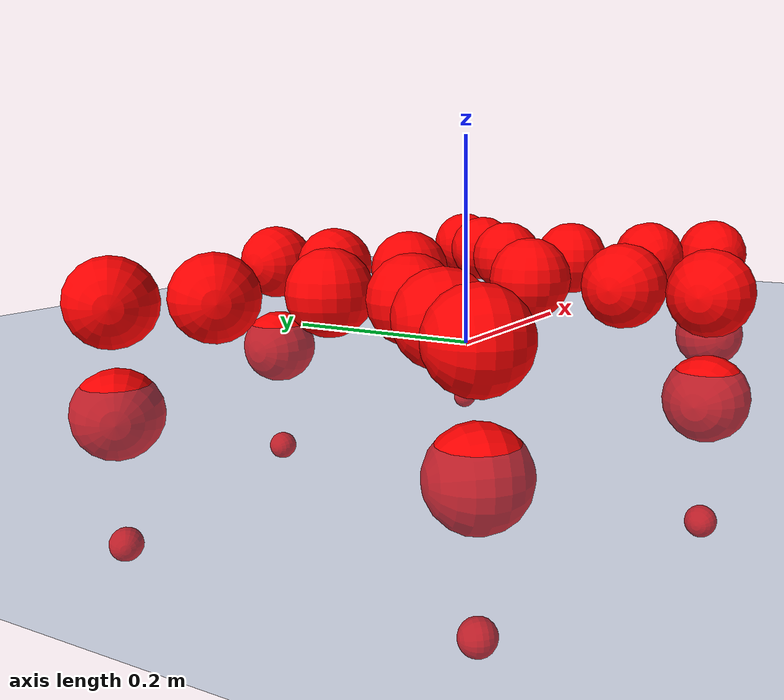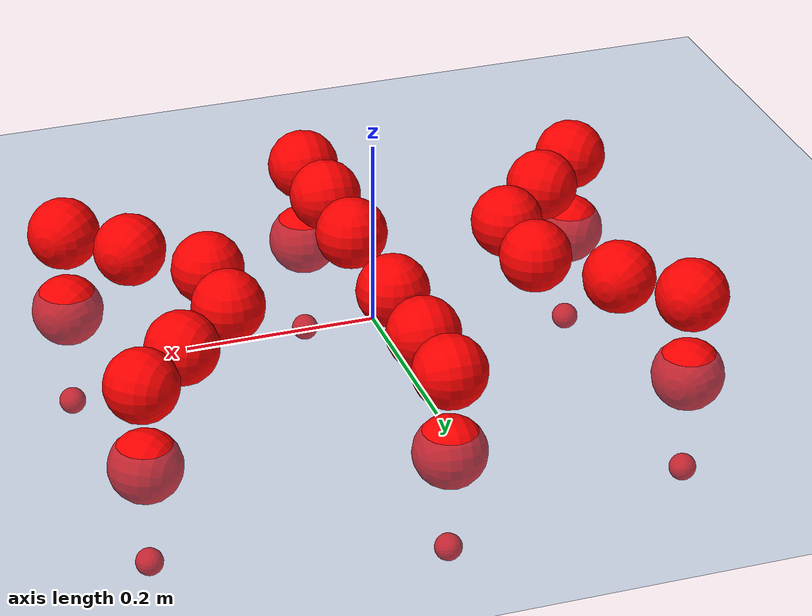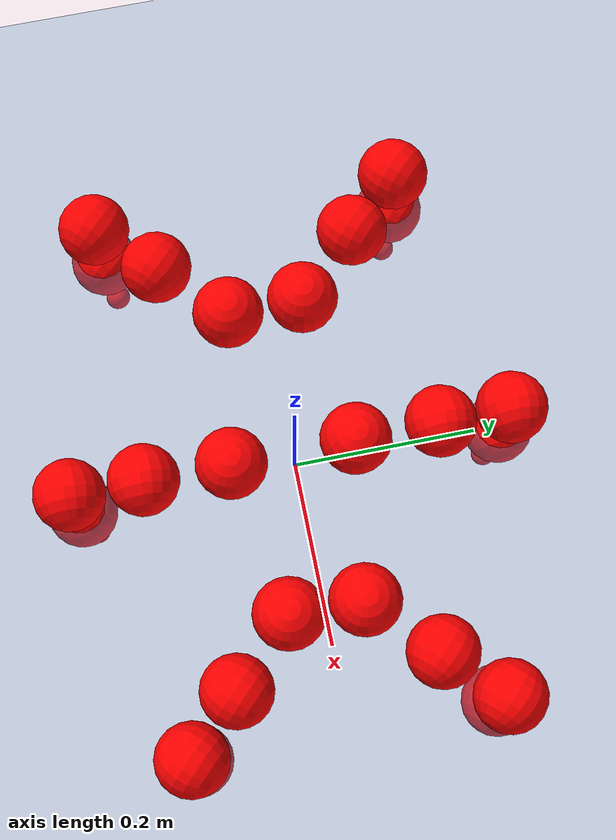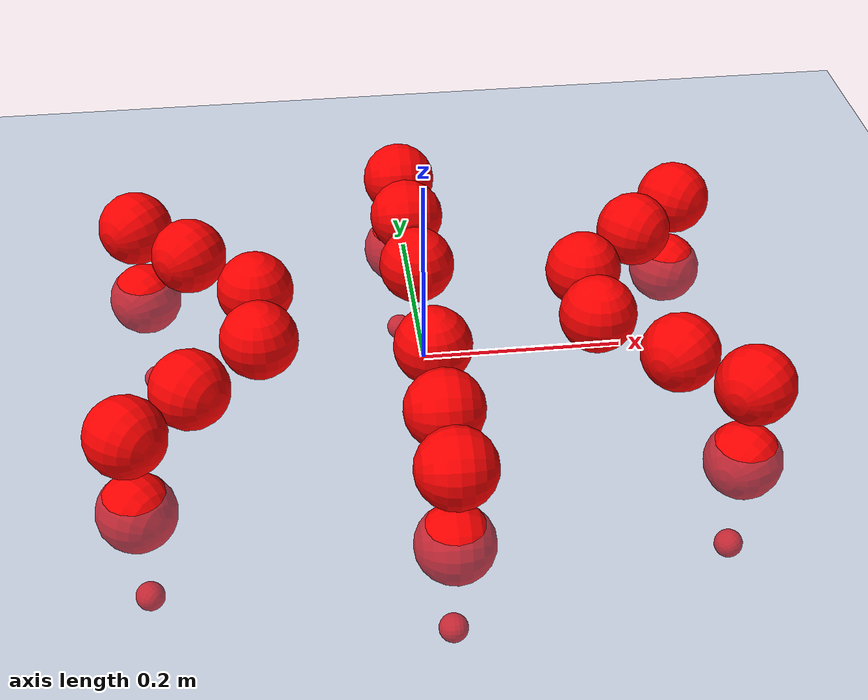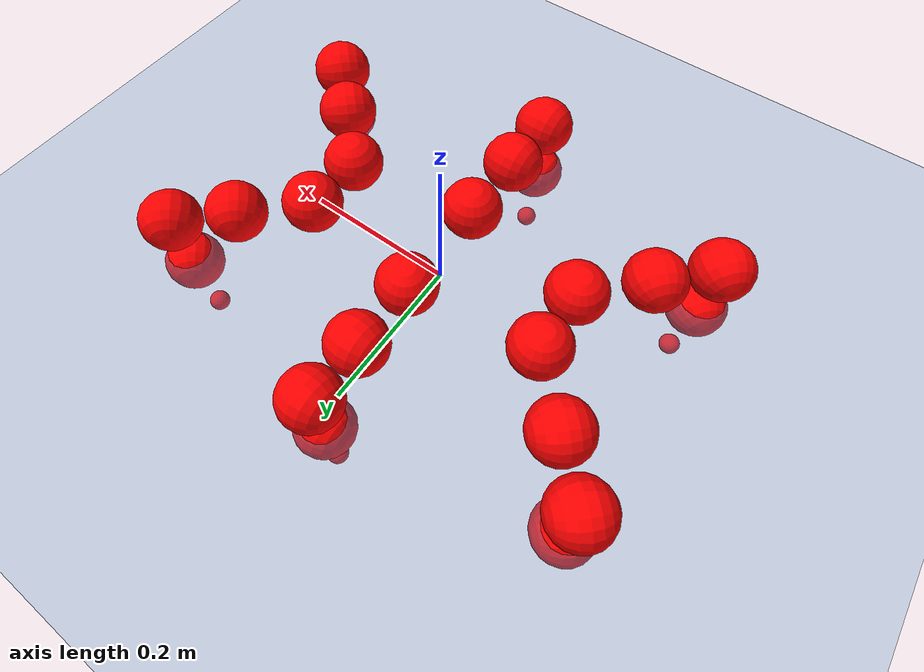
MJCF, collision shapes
<mujoco model="Golem">
  <compiler angle="radian" assetdir="assets" balanceinertia="true" inertiafromgeom="false"/>

  <option timestep="0.005" density="1.2" viscosity="2e-05"/>

  <size nkey="1"/>

  <visual>
    <quality shadowsize="8192"/>
    <map shadowclip="0.5"/>
  </visual>

  <default>
    <default class="/">
      <joint armature="0.01" damping="0.01" frictionloss="0.01"/>
      <geom contype="0" conaffinity="0" group="1" solref="-1000 -80"/>
      <site size="0.01 0.005 0.005" group="5"/>
      <general forcelimited="true" biastype="affine" gainprm="25" biasprm="0 -25 -0.5"/>
      <default class="visual">
        <geom type="mesh" group="2"/>
      </default>
      <default class="collision">
        <geom group="3"/>
      </default>
      <default class="foot">
        <geom size="0.01 0 0" condim="6" group="4" priority="1" solimp="0.015 1 0.01"/>
      </default>
      <default class="reward_collision_sphere">
        <geom group="5" rgba="1 0 0 1"/>
      </default>
    </default>
  </default>

  <asset>
    <texture type="skybox" colorspace="auto" name="//unnamed_texture_0" builtin="gradient" rgb1="0.95 0.95 0.95" rgb2="0.95 0.95 0.95" width="100" height="600"/>
    <texture type="2d" colorspace="auto" name="texplane" builtin="checker" rgb1="0.345 0.575 0.748" rgb2="0.345 0.575 0.748" markrgb="1 1 1" width="512" height="512"/>
    <material name="MatPlane" class="/" texture="texplane" texuniform="true" texrepeat="2 2" specular="0.9"/>
    <mesh name="body" class="/" file="body.stl" scale="0.001 0.001 0.001"/>
    <mesh name="coxa" class="/" file="coxa.stl" scale="0.001 0.001 0.001"/>
    <mesh name="femur" class="/" file="femur.stl" scale="0.001 0.001 0.001"/>
    <mesh name="tibia" class="/" file="tibia.stl" scale="0.001 0.001 0.001"/>
    <mesh name="tarsus" class="/" file="tarsus.stl" scale="0.001 0.001 0.001"/>
  </asset>

  <worldbody>
    <geom name="floor" class="/" size="100 100 0.125" type="plane" group="0" material="MatPlane"/>
    <light name="toplight_shadow" class="/" pos="0 0 5" dir="0.0990148 0.0990148 -0.990148" type="directional" ambient="0.04 0.04 0.04" diffuse="0.55 0.55 0.55" specular="0.12 0.12 0.12"/>
    <light name="toplight_fill" class="/" pos="0 0 5" dir="0.0990148 0.0990148 -0.990148" type="directional" castshadow="false" ambient="0.04 0.04 0.04" diffuse="0.3 0.3 0.3" specular="0.08 0.08 0.08"/>
    <body name="trunk" pos="0.000991321 -0.000854823 -0.00093607" quat="1 -3.57724e-06 -9.55102e-06 3.34994e-07">
      <inertial pos="0.000475362 0.00017656 -0.00352641" quat="0.999999 0.000161071 -0.000225202 -0.00145561" mass="3.13771" diaginertia="0.0126592 0.00211949 0.0142101"/>
      <joint name="//unnamed_joint_0" type="free"/>
      <geom name="//unnamed_geom_1" class="/" pos="0 0 0.0687408" quat="1 0 0 0" type="mesh" rgba="0.9 0.9 0.9 1" mesh="body"/>
      <site name="imu" class="/" pos="0.139443 0.00223298 0.10638" size="0.00952952"/>
      <camera name="track" class="/" pos="0 -1.47323 0" quat="0.707107 0.707107 0 0" mode="trackcom"/>
      <camera name="ego_camera" class="/" pos="0.136262 0 0.107407" quat="-0.5 -0.5 0.5 0.5"/>
      <body name="coxa_RR" pos="-0.185812 -0.061926 0.0685864" quat="0.382855 -0.000386412 9.60083e-05 -0.923808">
        <inertial pos="-0.000254818 -0.00119674 0.00149674" quat="0.999997 -0.00100319 -0.00178606 -0.00119564" mass="0.171359" diaginertia="0.0128092 0.00219358 0.0144192"/>
        <joint name="coxa_joint_RR" class="/" pos="0 0 0" axis="-0.00367989 0.00491364 -0.999981" range="-3.13565 3.141" armature="0.00944029" damping="0.00307968" frictionloss="0.00950136"/>
        <geom name="//unnamed_geom_2" class="/" type="mesh" rgba="0.2 0.2 0.2 1" mesh="coxa"/>
        <geom name="//unnamed_geom_3" class="reward_collision_sphere" size="0.0381181" pos="-0.031445 0 0"/>
        <body name="femur_RR" pos="0.0617779 0.000971629 9.17441e-05" quat="0.50019 -0.499898 0.50001 0.499902">
          <inertial pos="0.000960851 0.000614098 0.000149485" quat="0.999999 -0.000955892 0.000283519 0.000986697" mass="0.173585" diaginertia="0.012674 0.00217002 0.0146069"/>
          <joint name="femur_joint_RR" class="/" pos="0 0 0" axis="0.000807568 -0.00128287 -0.999999" range="-3.14734 3.14913" armature="0.00950932" damping="0" frictionloss="0.00960043"/>
          <geom name="//unnamed_geom_4" class="/" type="mesh" rgba="0.9 0.9 0.9 1" mesh="femur"/>
          <geom name="//unnamed_geom_5" class="reward_collision_sphere" size="0.0381181"/>
          <body name="tibia_RR" pos="0.000484817 -0.081212 0.00177106" quat="-0.000391989 1 -0.000266662 6.07107e-05">
            <inertial pos="-0.000326224 -9.89315e-05 0.000286585" quat="0.999999 -0.00115593 -0.000592261 -0.000156703" mass="0.174581" diaginertia="0.0127454 0.00219281 0.0145829"/>
            <joint name="tibia_joint_RR" class="/" pos="0 0 0" axis="-0.000424669 0.000175756 1" range="-3.15711 3.12249" armature="0.0092793" damping="0.00202514" frictionloss="0.00950559"/>
            <geom name="//unnamed_geom_6" class="/" type="mesh" rgba="0.2 0.2 0.2 1" mesh="tibia"/>
            <geom name="//unnamed_geom_7" class="reward_collision_sphere" size="0.0381181"/>
            <body name="tarsus_RR" pos="0.0921137 0.000643049 5.15486e-05" quat="1 0.000118338 6.86126e-05 -0.000132541">
              <inertial pos="0.0645831 0.000489399 -0.000992867" quat="0.500176 0.499814 0.499768 0.500241" mass="0.17343" diaginertia="0.0126426 0.00214284 0.0142671"/>
              <joint name="tarsus_joint_RR" class="/" pos="0 0 0" axis="-0.00443585 -0.00847322 0.999954" stiffness="0.00242682" range="-3.14473 3.12409" armature="0.00954234" damping="0.0426565" frictionloss="0.00997655"/>
              <geom name="//unnamed_geom_8" class="/" type="mesh" rgba="0.9 0.9 0.9 1" mesh="tarsus"/>
              <geom name="foot_1" class="foot" size="0.00928936" pos="0.117395 0 0" quat="0 -0.707107 0 0.707107"/>
              <geom name="//unnamed_geom_10" class="reward_collision_sphere" size="0.0381181"/>
              <geom name="//unnamed_geom_11" class="reward_collision_sphere" size="0.0142943" pos="0.112678 0 0"/>
              <site name="foot_1" class="foot" pos="0.117395 0 0" quat="0 -0.707107 0 0.707107" size="0.00952952"/>
            </body>
          </body>
        </body>
      </body>
      <body name="coxa_RM" pos="7.76908e-05 -0.0982324 0.0685341" quat="0.707279 -0.000257132 0.000142305 -0.706934">
        <inertial pos="-0.00018485 5.9418e-05 0.00153987" quat="0.99999 0.0006377 0.00394789 -0.00211234" mass="0.175193" diaginertia="0.0128183 0.00214084 0.0142023"/>
        <joint name="coxa_joint_RM" class="/" pos="0 0 0" axis="0.00290449 0.00248226 -0.999993" range="-3.12487 3.14773" armature="0.00937834" damping="0.00912468" frictionloss="0.00876861"/>
        <geom name="//unnamed_geom_12" class="/" type="mesh" rgba="0.2 0.2 0.2 1" mesh="coxa"/>
        <geom name="//unnamed_geom_13" class="reward_collision_sphere" size="0.0381181" pos="-0.031445 0 0"/>
        <body name="femur_RM" pos="0.0608268 -0.000514567 -0.000564781" quat="0.500186 -0.500208 0.499747 0.499859">
          <inertial pos="0.000211258 0.000611974 -4.4146e-05" quat="0.999996 -0.00234524 -0.00144603 0.000293423" mass="0.176499" diaginertia="0.0128416 0.00220211 0.0145581"/>
          <joint name="femur_joint_RM" class="/" pos="0 0 0" axis="0.00127678 -0.00451815 -0.999989" range="-3.13723 3.14198" armature="0.00997481" damping="0.00875645" frictionloss="0.00955275"/>
          <geom name="//unnamed_geom_14" class="/" type="mesh" rgba="0.9 0.9 0.9 1" mesh="femur"/>
          <geom name="//unnamed_geom_15" class="reward_collision_sphere" size="0.0381181"/>
          <body name="tibia_RM" pos="0.00116315 -0.0779023 0.000557293" quat="-0.000156577 1 4.69359e-05 1.51996e-05">
            <inertial pos="-0.000505172 -0.00132776 -0.000358254" quat="0.999997 -0.00204048 0.00161675 0.000330585" mass="0.173552" diaginertia="0.0127516 0.00222122 0.0143129"/>
            <joint name="tibia_joint_RM" class="/" pos="0 0 0" axis="-7.95403e-05 -8.01546e-05 1" range="-3.1504 3.17036" armature="0.00955859" damping="0.0115423" frictionloss="0.00964327"/>
            <geom name="//unnamed_geom_16" class="/" type="mesh" rgba="0.2 0.2 0.2 1" mesh="tibia"/>
            <geom name="//unnamed_geom_17" class="reward_collision_sphere" size="0.0381181"/>
            <body name="tarsus_RM" pos="0.0924297 1.01257e-05 -9.34628e-05" quat="1 -1.16026e-06 -7.2318e-06 -6.66888e-06">
              <inertial pos="0.0630349 0.000927049 4.47348e-05" quat="0.497044 0.5032 0.50237 0.497354" mass="0.175192" diaginertia="0.0125665 0.00218856 0.0142961"/>
              <joint name="tarsus_joint_RM" class="/" pos="0 0 0" axis="-0.000403723 -0.000893939 1" range="-3.15399 3.14031" armature="0.00910739" damping="0.007806" frictionloss="0.00943822"/>
              <geom name="//unnamed_geom_18" class="/" type="mesh" rgba="0.9 0.9 0.9 1" mesh="tarsus"/>
              <geom name="foot_2" class="foot" size="0.00953841" pos="0.117395 0 0" quat="0 -0.707107 0 0.707107"/>
              <geom name="//unnamed_geom_20" class="reward_collision_sphere" size="0.0381181"/>
              <geom name="//unnamed_geom_21" class="reward_collision_sphere" size="0.0142943" pos="0.112678 0 0"/>
              <site name="foot_2" class="foot" pos="0.117395 0 0" quat="0 -0.707107 0 0.707107" size="0.00952952"/>
            </body>
          </body>
        </body>
      </body>
      <body name="coxa_RF" pos="0.187071 -0.0602937 0.0700741" quat="0.923781 3.39229e-05 -0.000131259 -0.382921">
        <inertial pos="0.000399605 -0.00100623 -0.000354259" quat="1 -0.000119965 -0.000477393 -0.000311985" mass="0.174369" diaginertia="0.0126605 0.00216527 0.0145304"/>
        <joint name="coxa_joint_RF" class="/" pos="0 0 0" axis="-0.00213737 0.00166582 -0.999996" range="-3.14551 3.14076" armature="0.00963234" damping="0.0146819" frictionloss="0.00947352"/>
        <geom name="//unnamed_geom_22" class="/" type="mesh" rgba="0.2 0.2 0.2 1" mesh="coxa"/>
        <geom name="//unnamed_geom_23" class="reward_collision_sphere" size="0.0381181" pos="-0.031445 0 0"/>
        <body name="femur_RF" pos="0.0615197 -0.00038092 -0.00127824" quat="0.500078 -0.500051 0.50003 0.499842">
          <inertial pos="-0.000650083 0.000474496 -0.000402213" quat="0.999991 -0.000959709 0.0025208 -0.00326761" mass="0.175334" diaginertia="0.0126501 0.00221607 0.0145923"/>
          <joint name="femur_joint_RF" class="/" pos="0 0 0" axis="0.000598747 0.000451481 -1" range="-3.1615 3.1315" armature="0.00938032" damping="0.00944489" frictionloss="0.00945459"/>
          <geom name="//unnamed_geom_24" class="/" type="mesh" rgba="0.9 0.9 0.9 1" mesh="femur"/>
          <geom name="//unnamed_geom_25" class="reward_collision_sphere" size="0.0381181"/>
          <body name="tibia_RF" pos="-0.000382621 -0.0794156 0.00103079" quat="-3.34651e-05 1 1.26437e-05 0.000101164">
            <inertial pos="-0.0012476 0.000561966 -0.000280211" quat="1 -0.000106907 -0.00037627 -0.000227908" mass="0.175402" diaginertia="0.0128404 0.00215683 0.0143225"/>
            <joint name="tibia_joint_RF" class="/" pos="0 0 0" axis="0.00406808 -0.000244204 0.999992" range="-3.14017 3.11451" armature="0.00979345" damping="0.00922881" frictionloss="0.0095084"/>
            <geom name="//unnamed_geom_26" class="/" type="mesh" rgba="0.2 0.2 0.2 1" mesh="tibia"/>
            <geom name="//unnamed_geom_27" class="reward_collision_sphere" size="0.0381181"/>
            <body name="tarsus_RF" pos="0.0924356 0.000587073 0.000603737" quat="1 -0.000119115 -0.00039005 0.000288231">
              <inertial pos="0.0625886 0.000524993 -4.94348e-05" quat="0.498954 0.501171 0.499759 0.500113" mass="0.172691" diaginertia="0.0127239 0.00215711 0.0141332"/>
              <joint name="tarsus_joint_RF" class="/" pos="0 0 0" axis="-8.67333e-05 5.17121e-05 1" range="-3.12476 3.13565" armature="0.0091226" damping="0" frictionloss="0.00998072"/>
              <geom name="//unnamed_geom_28" class="/" type="mesh" rgba="0.9 0.9 0.9 1" mesh="tarsus"/>
              <geom name="foot_3" class="foot" size="0.00940259" pos="0.117395 0 0" quat="0 -0.707107 0 0.707107"/>
              <geom name="//unnamed_geom_30" class="reward_collision_sphere" size="0.0381181"/>
              <geom name="//unnamed_geom_31" class="reward_collision_sphere" size="0.0142943" pos="0.112678 0 0"/>
              <site name="foot_3" class="foot" pos="0.117395 0 0" quat="0 -0.707107 0 0.707107" size="0.00952952"/>
            </body>
          </body>
        </body>
      </body>
      <body name="coxa_LR" pos="-0.187061 0.06384 0.0687769" quat="0.382664 -2.33363e-05 -1.01339e-05 0.923888">
        <inertial pos="-0.000624352 -0.00114502 -0.000862548" quat="0.999983 0.00169291 -0.00549087 0.00114135" mass="0.173449" diaginertia="0.0125418 0.00219922 0.0141551"/>
        <joint name="coxa_joint_LR" class="/" pos="0 0 0" axis="8.32589e-05 -0.00761748 -0.999971" range="-3.13742 3.157" armature="0.00994265" damping="0.00999408" frictionloss="0.0095434"/>
        <geom name="//unnamed_geom_32" class="/" type="mesh" rgba="0.2 0.2 0.2 1" mesh="coxa"/>
        <geom name="//unnamed_geom_33" class="reward_collision_sphere" size="0.0381181" pos="-0.031445 0 0"/>
        <body name="femur_LR" pos="0.0628226 -0.00134325 -0.000829827" quat="0.500003 -0.499988 0.499977 0.500032">
          <inertial pos="0.000514389 1.36622e-05 -3.60041e-05" quat="0.999989 0.000194974 -0.00335141 -0.00314398" mass="0.172889" diaginertia="0.0126549 0.0021644 0.0142659"/>
          <joint name="femur_joint_LR" class="/" pos="0 0 0" axis="0.001056 0.00225804 0.999997" range="-3.1441 3.14082" armature="0.0097173" damping="0.00809316" frictionloss="0.00889163"/>
          <geom name="//unnamed_geom_34" class="/" type="mesh" rgba="0.9 0.9 0.9 1" mesh="femur"/>
          <geom name="//unnamed_geom_35" class="reward_collision_sphere" size="0.0381181"/>
          <body name="tibia_LR" pos="0.000543815 -0.0804098 -0.00120166" quat="9.69833e-05 1 -0.000348505 -4.03948e-05">
            <inertial pos="-0.000295998 -0.000106675 0.000137831" quat="0.999997 0.000753954 -0.00176366 -0.00172254" mass="0.170149" diaginertia="0.0124616 0.00214712 0.0140588"/>
            <joint name="tibia_joint_LR" class="/" pos="0 0 0" axis="-0.00165303 0.0062975 -0.999979" range="-3.12048 3.14009" armature="0.00952187" damping="0.00589574" frictionloss="0.00951297"/>
            <geom name="//unnamed_geom_36" class="/" type="mesh" rgba="0.2 0.2 0.2 1" mesh="tibia"/>
            <geom name="//unnamed_geom_37" class="reward_collision_sphere" size="0.0381181"/>
            <body name="tarsus_LR" pos="0.0923451 0.000600156 0.00140131" quat="1 7.11744e-06 -0.000471606 -0.00020686">
              <inertial pos="0.0647917 0.000371718 -0.00116546" quat="0.49922 0.500373 0.500221 0.500185" mass="0.17384" diaginertia="0.0126168 0.00216914 0.0142346"/>
              <joint name="tarsus_joint_LR" class="/" pos="0 0 0" axis="0.000121237 -0.000777181 -1" range="-3.14304 3.13433" armature="0.00962028" damping="0.00200391" frictionloss="0.00926895"/>
              <geom name="//unnamed_geom_38" class="/" type="mesh" rgba="0.9 0.9 0.9 1" mesh="tarsus"/>
              <geom name="foot_4" class="foot" size="0.00905509" pos="0.117395 0 0" quat="0.707107 0 -0.707107 0"/>
              <geom name="//unnamed_geom_40" class="reward_collision_sphere" size="0.0381181"/>
              <geom name="//unnamed_geom_41" class="reward_collision_sphere" size="0.0142943" pos="0.112678 0 0"/>
              <site name="foot_4" class="foot" pos="0.117395 0 0" quat="0.707107 0 -0.707107 0" size="0.00952952"/>
            </body>
          </body>
        </body>
      </body>
      <body name="coxa_LM" pos="-0.000847903 0.09694 0.0692316" quat="0.706907 -0.000118389 0.000100246 0.707307">
        <inertial pos="0.000152921 0.000603975 0.000935255" quat="0.999994 0.0015676 -0.00267181 -0.00177309" mass="0.174234" diaginertia="0.0128915 0.00219625 0.0143883"/>
        <joint name="coxa_joint_LM" class="/" pos="0 0 0" axis="-0.000831646 0.00105106 -0.999999" range="-3.1351 3.13643" armature="0.00908958" damping="0.00773376" frictionloss="0.00950092"/>
        <geom name="//unnamed_geom_42" class="/" type="mesh" rgba="0.2 0.2 0.2 1" mesh="coxa"/>
        <geom name="//unnamed_geom_43" class="reward_collision_sphere" size="0.0381181" pos="-0.031445 0 0"/>
        <body name="femur_LM" pos="0.0594155 0.00102848 -0.000388681" quat="0.499884 -0.500283 0.499748 0.500086">
          <inertial pos="-0.00105789 -0.000329754 0.00141712" quat="0.999988 -0.00312096 0.000953875 0.00352947" mass="0.172904" diaginertia="0.0124951 0.00212495 0.014167"/>
          <joint name="femur_joint_LM" class="/" pos="0 0 0" axis="6.69317e-05 -6.92225e-05 1" range="-3.13872 3.13945" armature="0.0091413" damping="0.00266452" frictionloss="0.00954595"/>
          <geom name="//unnamed_geom_44" class="/" type="mesh" rgba="0.9 0.9 0.9 1" mesh="femur"/>
          <geom name="//unnamed_geom_45" class="reward_collision_sphere" size="0.0381181"/>
          <body name="tibia_LM" pos="0.00123686 -0.0765784 0.000398124" quat="-1.21404e-05 1 -0.00050067 -0.000583835">
            <inertial pos="0.000277512 -0.00210038 -0.000499056" quat="0.999994 0.00223625 0.00248142 0.00011827" mass="0.174475" diaginertia="0.0125827 0.00218463 0.0142192"/>
            <joint name="tibia_joint_LM" class="/" pos="0 0 0" axis="-0.00114697 0.00062778 -0.999999" range="-3.13549 3.1339" armature="0.009798" damping="0" frictionloss="0.00997722"/>
            <geom name="//unnamed_geom_46" class="/" type="mesh" rgba="0.2 0.2 0.2 1" mesh="tibia"/>
            <geom name="//unnamed_geom_47" class="reward_collision_sphere" size="0.0381181"/>
            <body name="tarsus_LM" pos="0.092213 -0.00067416 -0.00151797" quat="1 0.00024424 -0.000700835 7.99001e-06">
              <inertial pos="0.0637918 0.000448105 0.000852903" quat="0.499913 0.500038 0.500134 0.499915" mass="0.168838" diaginertia="0.0125499 0.00212283 0.0139896"/>
              <joint name="tarsus_joint_LM" class="/" pos="0 0 0" axis="-0.000286372 -0.00206834 -0.999998" stiffness="0.000210352" range="-3.11152 3.14116" armature="0.00979393" damping="0" frictionloss="0.00916426"/>
              <geom name="//unnamed_geom_48" class="/" type="mesh" rgba="0.9 0.9 0.9 1" mesh="tarsus"/>
              <geom name="foot_5" class="foot" size="0.00930803" pos="0.117395 0 0" quat="0.707107 0 -0.707107 0"/>
              <geom name="//unnamed_geom_50" class="reward_collision_sphere" size="0.0381181"/>
              <geom name="//unnamed_geom_51" class="reward_collision_sphere" size="0.0142943" pos="0.112678 0 0"/>
              <site name="foot_5" class="foot" pos="0.117395 0 0" quat="0.707107 0 -0.707107 0" size="0.00952952"/>
            </body>
          </body>
        </body>
      </body>
      <body name="coxa_LF" pos="0.187915 0.0627128 0.0677194" quat="0.923883 -9.35191e-06 1.79601e-05 0.382675">
        <inertial pos="0.000276518 -4.30502e-05 0.00105575" quat="0.999996 0.00112033 -0.000116382 0.00247801" mass="0.172585" diaginertia="0.0124463 0.00214396 0.0140107"/>
        <joint name="coxa_joint_LF" class="/" pos="0 0 0" axis="0.00197295 -0.00336137 -0.999992" range="-3.12034 3.16472" armature="0.00975994" damping="0.00047666" frictionloss="0.00982612"/>
        <geom name="//unnamed_geom_52" class="/" type="mesh" rgba="0.2 0.2 0.2 1" mesh="coxa"/>
        <geom name="//unnamed_geom_53" class="reward_collision_sphere" size="0.0381181" pos="-0.031445 0 0"/>
        <body name="femur_LF" pos="0.061993 -0.000362626 -0.000224353" quat="0.499698 -0.500183 0.49984 0.500279">
          <inertial pos="0.00123137 -0.000342129 -0.000293242" quat="1 1.09665e-05 -2.22019e-05 6.05837e-06" mass="0.172347" diaginertia="0.0126812 0.00217087 0.0144509"/>
          <joint name="femur_joint_LF" class="/" pos="0 0 0" axis="-0.00389994 -0.000185256 0.999992" range="-3.15502 3.14744" armature="0.00967799" damping="9.50974e-05" frictionloss="0.0094834"/>
          <geom name="//unnamed_geom_54" class="/" type="mesh" rgba="0.9 0.9 0.9 1" mesh="femur"/>
          <geom name="//unnamed_geom_55" class="reward_collision_sphere" size="0.0381181"/>
          <body name="tibia_LF" pos="0.000849389 -0.0791006 -2.26523e-05" quat="6.042e-06 1 -0.00014297 0.000126421">
            <inertial pos="-9.48105e-05 -0.00018865 -0.000860815" quat="1 0.000171305 -0.000577572 9.34992e-05" mass="0.174846" diaginertia="0.0126625 0.00216641 0.0142499"/>
            <joint name="tibia_joint_LF" class="/" pos="0 0 0" axis="-0.000113104 0.00139097 -0.999999" range="-3.13918 3.13887" armature="0.00994396" damping="0.00236201" frictionloss="0.00907849"/>
            <geom name="//unnamed_geom_56" class="/" type="mesh" rgba="0.2 0.2 0.2 1" mesh="tibia"/>
            <geom name="//unnamed_geom_57" class="reward_collision_sphere" size="0.0381181"/>
            <body name="tarsus_LF" pos="0.0917396 -0.000126265 -0.000542628" quat="1 -4.24057e-05 -0.000449253 1.87736e-05">
              <inertial pos="0.0632274 0.000193038 0.00103821" quat="0.501681 0.499623 0.499785 0.498906" mass="0.170816" diaginertia="0.0126286 0.00216453 0.0141056"/>
              <joint name="tarsus_joint_LF" class="/" pos="0 0 0" axis="0.0059309 -0.0014719 -0.999981" stiffness="0.0294228" range="-3.13451 3.11835" armature="0.00955936" damping="0.0260856" frictionloss="0.00955301"/>
              <geom name="//unnamed_geom_58" class="/" type="mesh" rgba="0.9 0.9 0.9 1" mesh="tarsus"/>
              <geom name="foot_6" class="foot" size="0.00953408" pos="0.117395 0 0" quat="0.707107 0 -0.707107 0"/>
              <geom name="//unnamed_geom_60" class="reward_collision_sphere" size="0.0381181"/>
              <geom name="//unnamed_geom_61" class="reward_collision_sphere" size="0.0142943" pos="0.112678 0 0"/>
              <site name="foot_6" class="foot" pos="0.117395 0 0" quat="0.707107 0 -0.707107 0" size="0.00952952"/>
            </body>
          </body>
        </body>
      </body>
    </body>
  </worldbody>

  <contact>
    <pair class="/" geom1="floor" geom2="foot_1" name="//unnamed_contact_0"/>
    <pair class="/" geom1="floor" geom2="foot_2" name="//unnamed_contact_1"/>
    <pair class="/" geom1="floor" geom2="foot_3" name="//unnamed_contact_2"/>
    <pair class="/" geom1="floor" geom2="foot_4" name="//unnamed_contact_3"/>
    <pair class="/" geom1="floor" geom2="foot_5" name="//unnamed_contact_4"/>
    <pair class="/" geom1="floor" geom2="foot_6" name="//unnamed_contact_5"/>
  </contact>

  <actuator>
    <general name="coxa_joint_RR" class="/" joint="coxa_joint_RR" forcerange="-7.03265 7.03265" gainprm="22.9756" biasprm="0 -22.9756 -0.493063"/>
    <general name="femur_joint_RR" class="/" joint="femur_joint_RR" forcerange="-6.9432 6.9432" gainprm="22.9756" biasprm="0 -22.9756 -0.493063"/>
    <general name="tibia_joint_RR" class="/" joint="tibia_joint_RR" forcerange="-7.01154 7.01154" gainprm="22.9756" biasprm="0 -22.9756 -0.493063"/>
    <general name="tarsus_joint_RR" class="/" joint="tarsus_joint_RR" forcerange="-6.89529 6.89529" gainprm="22.9756" biasprm="0 -22.9756 -0.493063"/>
    <general name="coxa_joint_RM" class="/" joint="coxa_joint_RM" forcerange="-6.65274 6.65274" gainprm="22.9756" biasprm="0 -22.9756 -0.493063"/>
    <general name="femur_joint_RM" class="/" joint="femur_joint_RM" forcerange="-6.85303 6.85303" gainprm="22.9756" biasprm="0 -22.9756 -0.493063"/>
    <general name="tibia_joint_RM" class="/" joint="tibia_joint_RM" forcerange="-7.16569 7.16569" gainprm="22.9756" biasprm="0 -22.9756 -0.493063"/>
    <general name="tarsus_joint_RM" class="/" joint="tarsus_joint_RM" forcerange="-7.00684 7.00684" gainprm="22.9756" biasprm="0 -22.9756 -0.493063"/>
    <general name="coxa_joint_RF" class="/" joint="coxa_joint_RF" forcerange="-6.7353 6.7353" gainprm="22.9756" biasprm="0 -22.9756 -0.493063"/>
    <general name="femur_joint_RF" class="/" joint="femur_joint_RF" forcerange="-7.20016 7.20016" gainprm="22.9756" biasprm="0 -22.9756 -0.493063"/>
    <general name="tibia_joint_RF" class="/" joint="tibia_joint_RF" forcerange="-6.60437 6.60437" gainprm="22.9756" biasprm="0 -22.9756 -0.493063"/>
    <general name="tarsus_joint_RF" class="/" joint="tarsus_joint_RF" forcerange="-6.70981 6.70981" gainprm="22.9756" biasprm="0 -22.9756 -0.493063"/>
    <general name="coxa_joint_LR" class="/" joint="coxa_joint_LR" forcerange="-6.97689 6.97689" gainprm="22.9756" biasprm="0 -22.9756 -0.493063"/>
    <general name="femur_joint_LR" class="/" joint="femur_joint_LR" forcerange="-6.87924 6.87924" gainprm="22.9756" biasprm="0 -22.9756 -0.493063"/>
    <general name="tibia_joint_LR" class="/" joint="tibia_joint_LR" forcerange="-7.04054 7.04054" gainprm="22.9756" biasprm="0 -22.9756 -0.493063"/>
    <general name="tarsus_joint_LR" class="/" joint="tarsus_joint_LR" forcerange="-6.81266 6.81266" gainprm="22.9756" biasprm="0 -22.9756 -0.493063"/>
    <general name="coxa_joint_LM" class="/" joint="coxa_joint_LM" forcerange="-6.98574 6.98574" gainprm="22.9756" biasprm="0 -22.9756 -0.493063"/>
    <general name="femur_joint_LM" class="/" joint="femur_joint_LM" forcerange="-6.97629 6.97629" gainprm="22.9756" biasprm="0 -22.9756 -0.493063"/>
    <general name="tibia_joint_LM" class="/" joint="tibia_joint_LM" forcerange="-6.93029 6.93029" gainprm="22.9756" biasprm="0 -22.9756 -0.493063"/>
    <general name="tarsus_joint_LM" class="/" joint="tarsus_joint_LM" forcerange="-6.88112 6.88112" gainprm="22.9756" biasprm="0 -22.9756 -0.493063"/>
    <general name="coxa_joint_LF" class="/" joint="coxa_joint_LF" forcerange="-6.57552 6.57552" gainprm="22.9756" biasprm="0 -22.9756 -0.493063"/>
    <general name="femur_joint_LF" class="/" joint="femur_joint_LF" forcerange="-6.92758 6.92758" gainprm="22.9756" biasprm="0 -22.9756 -0.493063"/>
    <general name="tibia_joint_LF" class="/" joint="tibia_joint_LF" forcerange="-7.03176 7.03176" gainprm="22.9756" biasprm="0 -22.9756 -0.493063"/>
    <general name="tarsus_joint_LF" class="/" joint="tarsus_joint_LF" forcerange="-7.19556 7.19556" gainprm="22.9756" biasprm="0 -22.9756 -0.493063"/>
  </actuator>

  <sensor>
    <gyro site="imu" name="imu_angular_velocity"/>
    <velocimeter site="imu" name="imu_linear_velocity"/>
    <framelinvel objtype="site" objname="foot_1" name="foot_1_global_linear_velocity"/>
    <framelinvel objtype="site" objname="foot_2" name="foot_2_global_linear_velocity"/>
    <framelinvel objtype="site" objname="foot_3" name="foot_3_global_linear_velocity"/>
    <framelinvel objtype="site" objname="foot_4" name="foot_4_global_linear_velocity"/>
    <framelinvel objtype="site" objname="foot_5" name="foot_5_global_linear_velocity"/>
    <framelinvel objtype="site" objname="foot_6" name="foot_6_global_linear_velocity"/>
  </sensor>

  <keyframe>
    <key name="home" qpos="0 0 0.1457 1 0 0 0 0 0 0 0 0 0 0 0 0 0 0 0 0 0 0 0 0 0 0 0 0 0 0 0"/>
  </keyframe>
</mujoco>
